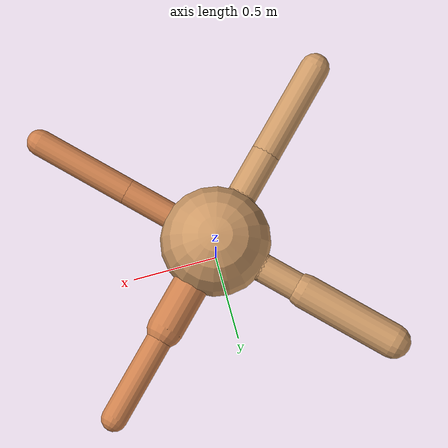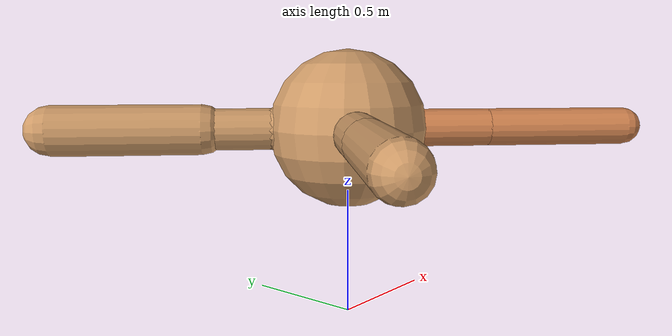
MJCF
<?xml version="1.0" encoding="utf-8"?>
<mujoco model="ant">
	<compiler angle="degree" coordinate="local" inertiafromgeom="true"></compiler>
	<option integrator="RK4" timestep="0.01"></option>
	<custom>
		<numeric data="0.0 0.0 0.55 1.0 0.0 0.0 0.0 0.0 1.0 0.0 -1.0 0.0 -1.0 0.0 1.0" name="init_qpos"></numeric>
	</custom>
	<default>
		<joint armature="1" damping="0.9643060776795733" limited="true"></joint>
		<geom conaffinity="0" condim="3" density="5.0" friction="1.1847039377908413 0.09383808929468924 0.0906763984741294" margin="0.01" rgba="0.8 0.6 0.4 1"></geom>
	</default>
	<worldbody>
		<body name="torso" pos="0 0 0.75">
			<geom name="torso_geom" pos="0 0 0" size="0.3102283102660965" type="sphere"></geom>
			<body name="front_left_leg" pos="0 0 0">
				<geom fromto="0.0 0.0 0.0 0.2 0.2 0.0" name="aux_1_geom" size="0.08106874906090909" type="capsule" rgba=".8 .5 .3 1"></geom>
				<body name="aux_1" pos="0.2 0.2 0">
					<joint axis="0 0 1" name="hip_1" pos="0.0 0.0 0.0" range="-40 40" type="hinge"></joint>
					<geom fromto="0.0 0.0 0.0 0.2 0.2 0.0" name="left_leg_geom" size="0.10284418955784908" type="capsule" rgba=".8 .5 .3 1"></geom>
					<body pos="0.2 0.2 0" name="front_left_foot">
						<joint axis="-1 1 0" name="ankle_1" pos="0.0 0.0 0.0" range="30 100" type="hinge"></joint>
						<geom fromto="0.0 0.0 0.0 0.4 0.4 0.0" name="left_ankle_geom" size="0.07328791802969245" type="capsule" rgba=".8 .5 .3 1"></geom>
					</body>
				</body>
			</body>
			<body name="front_right_leg" pos="0 0 0">
				<geom fromto="0.0 0.0 0.0 -0.2 0.2 0.0" name="aux_2_geom" size="0.08534174718689853" type="capsule"></geom>
				<body name="aux_2" pos="-0.2 0.2 0">
					<joint axis="0 0 1" name="hip_2" pos="0.0 0.0 0.0" range="-40 40" type="hinge"></joint>
					<geom fromto="0.0 0.0 0.0 -0.2 0.2 0.0" name="right_leg_geom" size="0.08096698353212675" type="capsule"></geom>
					<body pos="-0.2 0.2 0" name="front_right_foot">
						<joint axis="1 1 0" name="ankle_2" pos="0.0 0.0 0.0" range="-100 -30" type="hinge"></joint>
						<geom fromto="0.0 0.0 0.0 -0.4 0.4 0.0" name="right_ankle_geom" size="0.09756825108827971" type="capsule"></geom>
					</body>
				</body>
			</body>
			<body name="left_back_leg" pos="0 0 0">
				<geom fromto="0.0 0.0 0.0 -0.2 -0.2 0.0" name="aux_3_geom" size="0.08790339373083082" type="capsule"></geom>
				<body name="aux_3" pos="-0.2 -0.2 0">
					<joint axis="0 0 1" name="hip_3" pos="0.0 0.0 0.0" range="-40 40" type="hinge"></joint>
					<geom fromto="0.0 0.0 0.0 -0.2 -0.2 0.0" name="back_leg_geom" size="0.08451032024074195" type="capsule"></geom>
					<body pos="-0.2 -0.2 0" name="left_back_foot">
						<joint axis="-1 1 0" name="ankle_3" pos="0.0 0.0 0.0" range="-100 -30" type="hinge"></joint>
						<geom fromto="0.0 0.0 0.0 -0.4 -0.4 0.0" name="third_ankle_geom" size="0.08390700076913292" type="capsule"></geom>
					</body>
				</body>
			</body>
			<body name="right_back_leg" pos="0 0 0">
				<geom fromto="0.0 0.0 0.0 0.2 -0.2 0.0" name="aux_4_geom" size="0.06108345301132969" type="capsule" rgba=".8 .5 .3 1"></geom>
				<body name="aux_4" pos="0.2 -0.2 0">
					<joint axis="0 0 1" name="hip_4" pos="0.0 0.0 0.0" range="-40 40" type="hinge"></joint>
					<geom fromto="0.0 0.0 0.0 0.2 -0.2 0.0" name="rightback_leg_geom" size="0.07418087083527869" type="capsule" rgba=".8 .5 .3 1"></geom>
					<body pos="0.2 -0.2 0" name="right_back_foot">
						<joint axis="1 1 0" name="ankle_4" pos="0.0 0.0 0.0" range="30 100" type="hinge"></joint>
						<geom fromto="0.0 0.0 0.0 0.4 -0.4 0.0" name="fourth_ankle_geom" size="0.0743294583224202" type="capsule" rgba=".8 .5 .3 1"></geom>
					</body>
				</body>
			</body>
		</body>
	</worldbody>
	<actuator>
		<motor ctrllimited="true" ctrlrange="-1.0 1.0" joint="hip_4" gear="150"></motor>
		<motor ctrllimited="true" ctrlrange="-1.0 1.0" joint="ankle_4" gear="150"></motor>
		<motor ctrllimited="true" ctrlrange="-1.0 1.0" joint="hip_1" gear="150"></motor>
		<motor ctrllimited="true" ctrlrange="-1.0 1.0" joint="ankle_1" gear="150"></motor>
		<motor ctrllimited="true" ctrlrange="-1.0 1.0" joint="hip_2" gear="150"></motor>
		<motor ctrllimited="true" ctrlrange="-1.0 1.0" joint="ankle_2" gear="150"></motor>
		<motor ctrllimited="true" ctrlrange="-1.0 1.0" joint="hip_3" gear="150"></motor>
		<motor ctrllimited="true" ctrlrange="-1.0 1.0" joint="ankle_3" gear="150"></motor>
	</actuator>
</mujoco>
